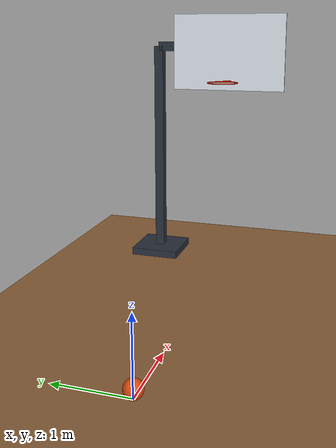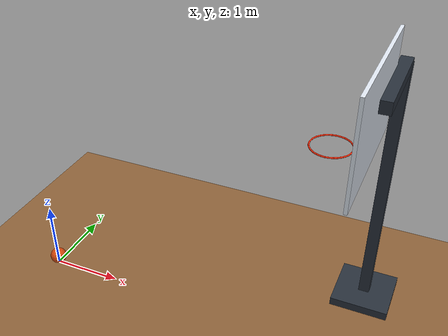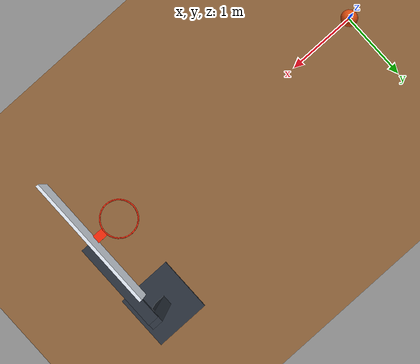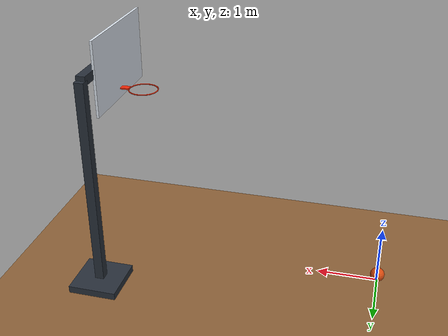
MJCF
<mujoco model="basketball_shot_corrected">
  <compiler angle="radian"/>
  <option timestep="0.002" gravity="0 0 -9.81" integrator="RK4"/>

  <visual>
    <global azimuth="90" elevation="-15"/>
    <headlight ambient="0.35 0.35 0.35" diffuse="0.65 0.65 0.65"/>
  </visual>

  <asset>
    <material name="court_material" rgba="0.55 0.38 0.22 1"/>
    <material name="ball_material" rgba="0.85 0.29 0.055 1"/>
    <material name="rim_material" rgba="0.95 0.16 0.035 1"/>
    <material name="board_material" rgba="0.88 0.91 0.95 1"/>
    <material name="support_material" rgba="0.16 0.19 0.23 1"/>
  </asset>

  <worldbody>
    <light name="court_light" pos="2 -3 7" dir="0 0.3 -1"/>
    <camera name="overview" pos="2 -10 5" xyaxes="1 0 0 0 0.287348 0.957826"/>

    <geom name="floor" type="plane" pos="0 0 0" size="12 8 0.1" material="court_material" friction="0.8 0.01 0.002"/>

    <body name="ball" pos="0 0 0.12">
      <freejoint name="ball_free"/>
      <geom name="ball" type="sphere" size="0.12" mass="0.624" material="ball_material" friction="0.6 0.01 0.002" solref="0.01 0.8"/>
    </body>

    <body name="hoop" pos="4 0 3.05">
      <!-- Only the rim belongs to this body. -->
      <!-- Tube radius is 9 mm; nominal inner diameter is 457.2 mm. -->
      <geom name="rim_00" type="capsule" fromto="0.237600 0 0 0.233035 0.046352 0" size="0.009" material="rim_material"/>
      <geom name="rim_01" type="capsule" fromto="0.233035 0.046352 0 0.219514 0.090926 0" size="0.009" material="rim_material"/>
      <geom name="rim_02" type="capsule" fromto="0.219514 0.090926 0 0.197557 0.132003 0" size="0.009" material="rim_material"/>
      <geom name="rim_03" type="capsule" fromto="0.197557 0.132003 0 0.168009 0.168009 0" size="0.009" material="rim_material"/>
      <geom name="rim_04" type="capsule" fromto="0.168009 0.168009 0 0.132003 0.197557 0" size="0.009" material="rim_material"/>
      <geom name="rim_05" type="capsule" fromto="0.132003 0.197557 0 0.090926 0.219514 0" size="0.009" material="rim_material"/>
      <geom name="rim_06" type="capsule" fromto="0.090926 0.219514 0 0.046352 0.233035 0" size="0.009" material="rim_material"/>
      <geom name="rim_07" type="capsule" fromto="0.046352 0.233035 0 0 0.237600 0" size="0.009" material="rim_material"/>
      <geom name="rim_08" type="capsule" fromto="0 0.237600 0 -0.046352 0.233035 0" size="0.009" material="rim_material"/>
      <geom name="rim_09" type="capsule" fromto="-0.046352 0.233035 0 -0.090926 0.219514 0" size="0.009" material="rim_material"/>
      <geom name="rim_10" type="capsule" fromto="-0.090926 0.219514 0 -0.132003 0.197557 0" size="0.009" material="rim_material"/>
      <geom name="rim_11" type="capsule" fromto="-0.132003 0.197557 0 -0.168009 0.168009 0" size="0.009" material="rim_material"/>
      <geom name="rim_12" type="capsule" fromto="-0.168009 0.168009 0 -0.197557 0.132003 0" size="0.009" material="rim_material"/>
      <geom name="rim_13" type="capsule" fromto="-0.197557 0.132003 0 -0.219514 0.090926 0" size="0.009" material="rim_material"/>
      <geom name="rim_14" type="capsule" fromto="-0.219514 0.090926 0 -0.233035 0.046352 0" size="0.009" material="rim_material"/>
      <geom name="rim_15" type="capsule" fromto="-0.233035 0.046352 0 -0.237600 0 0" size="0.009" material="rim_material"/>
      <geom name="rim_16" type="capsule" fromto="-0.237600 0 0 -0.233035 -0.046352 0" size="0.009" material="rim_material"/>
      <geom name="rim_17" type="capsule" fromto="-0.233035 -0.046352 0 -0.219514 -0.090926 0" size="0.009" material="rim_material"/>
      <geom name="rim_18" type="capsule" fromto="-0.219514 -0.090926 0 -0.197557 -0.132003 0" size="0.009" material="rim_material"/>
      <geom name="rim_19" type="capsule" fromto="-0.197557 -0.132003 0 -0.168009 -0.168009 0" size="0.009" material="rim_material"/>
      <geom name="rim_20" type="capsule" fromto="-0.168009 -0.168009 0 -0.132003 -0.197557 0" size="0.009" material="rim_material"/>
      <geom name="rim_21" type="capsule" fromto="-0.132003 -0.197557 0 -0.090926 -0.219514 0" size="0.009" material="rim_material"/>
      <geom name="rim_22" type="capsule" fromto="-0.090926 -0.219514 0 -0.046352 -0.233035 0" size="0.009" material="rim_material"/>
      <geom name="rim_23" type="capsule" fromto="-0.046352 -0.233035 0 0 -0.237600 0" size="0.009" material="rim_material"/>
      <geom name="rim_24" type="capsule" fromto="0 -0.237600 0 0.046352 -0.233035 0" size="0.009" material="rim_material"/>
      <geom name="rim_25" type="capsule" fromto="0.046352 -0.233035 0 0.090926 -0.219514 0" size="0.009" material="rim_material"/>
      <geom name="rim_26" type="capsule" fromto="0.090926 -0.219514 0 0.132003 -0.197557 0" size="0.009" material="rim_material"/>
      <geom name="rim_27" type="capsule" fromto="0.132003 -0.197557 0 0.168009 -0.168009 0" size="0.009" material="rim_material"/>
      <geom name="rim_28" type="capsule" fromto="0.168009 -0.168009 0 0.197557 -0.132003 0" size="0.009" material="rim_material"/>
      <geom name="rim_29" type="capsule" fromto="0.197557 -0.132003 0 0.219514 -0.090926 0" size="0.009" material="rim_material"/>
      <geom name="rim_30" type="capsule" fromto="0.219514 -0.090926 0 0.233035 -0.046352 0" size="0.009" material="rim_material"/>
      <geom name="rim_31" type="capsule" fromto="0.233035 -0.046352 0 0.237600 0 0" size="0.009" material="rim_material"/>
    </body>

    <body name="backboard" pos="4.401 0 3.51">
      <geom name="backboard" type="box" size="0.02 0.915 0.61" material="board_material"/>
    </body>

    <body name="mount" pos="4.3115 0 3.05">
      <geom name="mount" type="box" size="0.0695 0.055 0.012" material="rim_material"/>
    </body>

    <body name="support" pos="4.48 1.20 0">
      <geom name="support_base" type="box" pos="0 0 0.06" size="0.40 0.40 0.06" material="support_material"/>
      <geom name="support_post" type="box" pos="0 0 1.80" size="0.075 0.075 1.80" material="support_material"/>
      <geom name="support_arm" type="box" pos="0 -0.60 3.60" size="0.075 0.60 0.075" material="support_material"/>
    </body>
  </worldbody>

  <keyframe>
    <key name="start" time="0" qpos="0 0 0.12 1 0 0 0" qvel="2.666666667 0 9.310833333 0 -6 0"/>
  </keyframe>
</mujoco>
